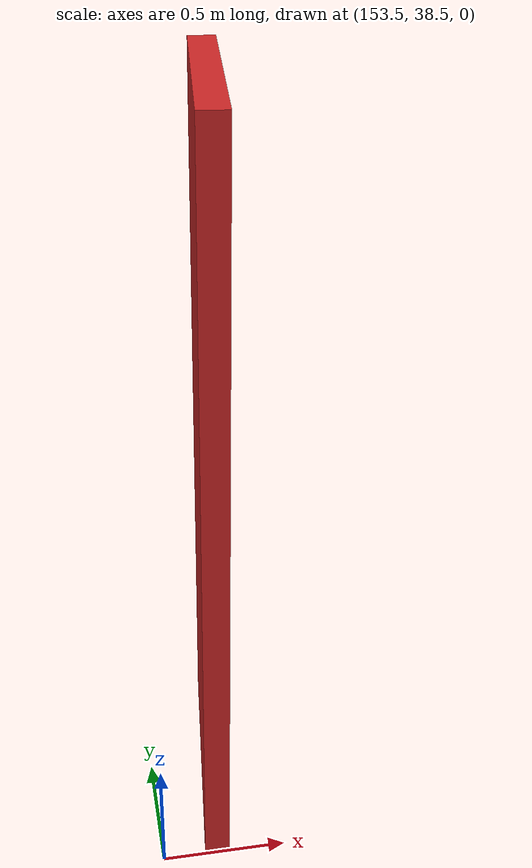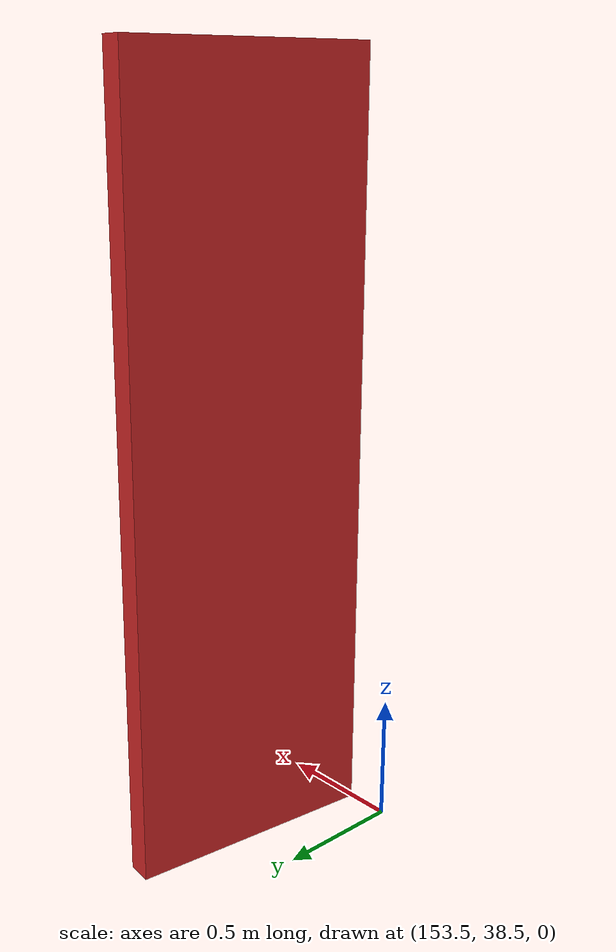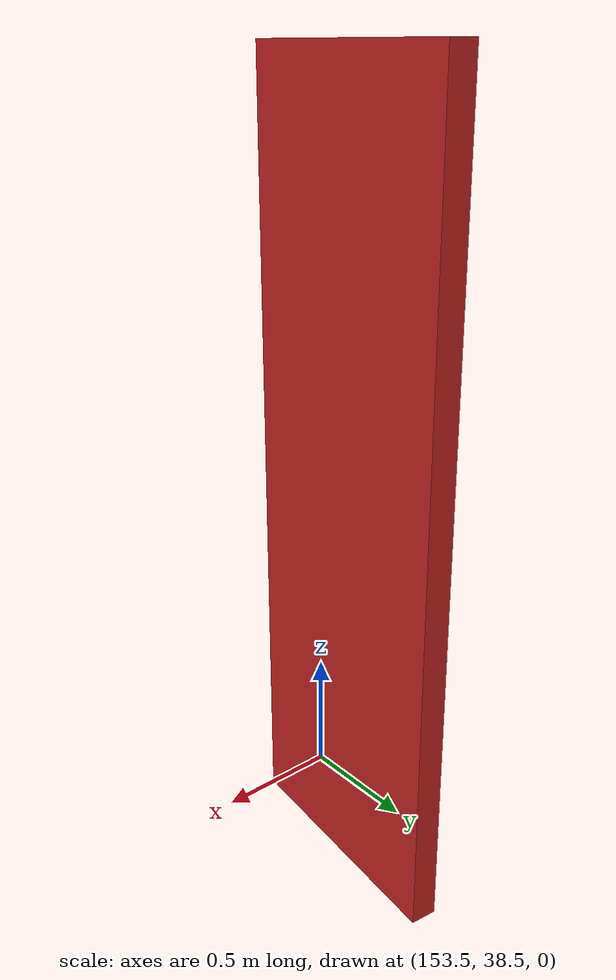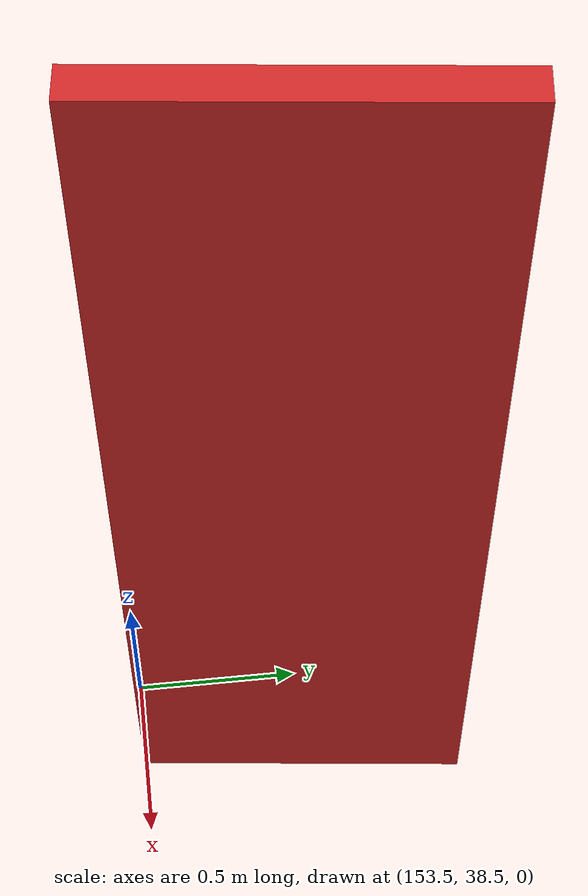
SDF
<?xml version="1.0" ?>
<sdf version="1.6">
  <world name="default">
    <model name="door_153.8_39.0_0.0">
      <static>true</static>
      <pose>153.77499999999418 38.99500000011176 1.5 0 0 -1.6814535479881518</pose>
      <link name="link">
        <visual name="visual">
          <geometry>
            <box>
              <size>0.9960923654221514 0.1 3</size>
            </box>
          </geometry>
          <material>
            <script>
              <uri>file://media/materials/scripts/gazebo.material</uri>
              <name>Gazebo/Red</name>
            </script>
          </material>
        </visual>
      </link>
    </model>
  </world>
</sdf>
